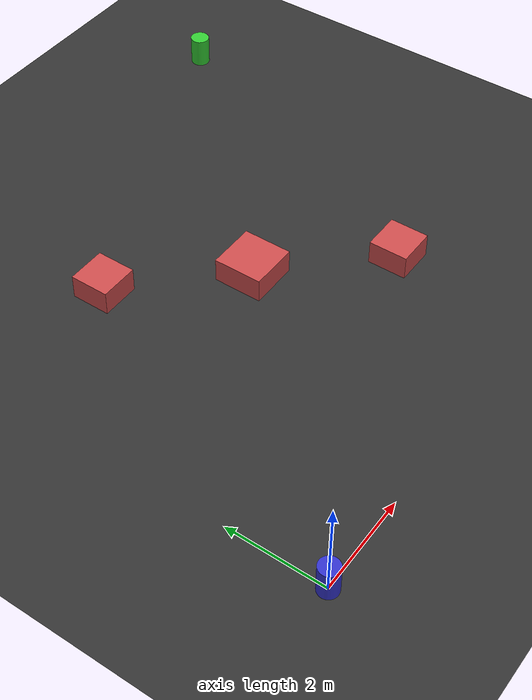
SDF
<?xml version="1.0" encoding="UTF-8"?>
<sdf version="1.9">

  <world name="swarm_planning_world">
    <!-- Physics -->
    <physics type="ode">
      <max_step_size>0.001</max_step_size>
      <real_time_factor>1.0</real_time_factor>
      <real_time_update_rate>1000</real_time_update_rate>
    </physics>

    <!-- Scene -->
    <scene>
      <ambient>0.5 0.5 0.5 1</ambient>
      <background>0.7 0.7 0.7 1</background>
      <shadows>true</shadows>
      <grid>false</grid>
    </scene>

    <!-- Light -->
    <light type="directional" name="sun">
      <cast_shadows>true</cast_shadows>
      <pose>0 0 10 0 0 0</pose>
      <diffuse>0.8 0.8 0.8 1</diffuse>
      <specular>0.2 0.2 0.2 1</specular>
      <attenuation>
        <range>100</range>
        <constant>0.5</constant>
        <linear>0.01</linear>
        <quadratic>0.001</quadratic>
      </attenuation>
    </light>

    <!-- Ground Plane -->
    <model name="ground_plane">
      <static>true</static>
      <link name="link">
        <collision name="collision">
          <geometry>
            <plane>
              <normal>0 0 1</normal>
              <size>50 50</size>
            </plane>
          </geometry>
          <surface>
            <friction>
              <ode>
                <mu>1.0</mu>
                <mu2>1.0</mu2>
              </ode>
            </friction>
          </surface>
        </collision>
        <visual name="visual">
          <geometry>
            <plane>
              <normal>0 0 1</normal>
              <size>50 50</size>
            </plane>
          </geometry>
          <material>
            <ambient>0.2 0.2 0.2 1</ambient>
            <diffuse>0.2 0.2 0.2 1</diffuse>
          </material>
        </visual>
      </link>
    </model>

    <!-- Robot (TurtleBot3-like) -->
    <model name="robot">
      <pose>0 0 0 0 0 0</pose>
      <static>false</static>
      <link name="base_link">
        <!-- Main body -->
        <pose>0 0 0.1 0 0 0</pose>
        <inertial>
          <mass>1.0</mass>
          <inertia>
            <ixx>0.001</ixx>
            <ixy>0</ixy>
            <ixz>0</ixz>
            <iyy>0.001</iyy>
            <iyz>0</iyz>
            <izz>0.001</izz>
          </inertia>
        </inertial>
        <collision name="collision">
          <geometry>
            <cylinder>
              <radius>0.15</radius>
              <length>0.1</length>
            </cylinder>
          </geometry>
        </collision>
        <visual name="visual">
          <geometry>
            <cylinder>
              <radius>0.15</radius>
              <length>0.1</length>
            </cylinder>
          </geometry>
          <material>
            <ambient>0.3 0.5 0.8 1</ambient>
            <diffuse>0.3 0.5 0.8 1</diffuse>
          </material>
        </visual>
      </link>
    </model>

    <!-- Obstacles -->
    <!-- Obstacle 1 -->
    <model name="obstacle_1">
      <pose>5 5 0.25 0 0 0</pose>
      <static>true</static>
      <link name="link">
        <collision name="collision">
          <geometry>
            <box>
              <size>1 1 0.5</size>
            </box>
          </geometry>
        </collision>
        <visual name="visual">
          <geometry>
            <box>
              <size>1 1 0.5</size>
            </box>
          </geometry>
          <material>
            <ambient>0.8 0.3 0.3 1</ambient>
            <diffuse>0.8 0.3 0.3 1</diffuse>
          </material>
        </visual>
      </link>
    </model>

    <!-- Obstacle 2 -->
    <model name="obstacle_2">
      <pose>3 7 0.25 0 0 0</pose>
      <static>true</static>
      <link name="link">
        <collision name="collision">
          <geometry>
            <box>
              <size>0.8 0.8 0.5</size>
            </box>
          </geometry>
        </collision>
        <visual name="visual">
          <geometry>
            <box>
              <size>0.8 0.8 0.5</size>
            </box>
          </geometry>
          <material>
            <ambient>0.8 0.3 0.3 1</ambient>
            <diffuse>0.8 0.3 0.3 1</diffuse>
          </material>
        </visual>
      </link>
    </model>

    <!-- Obstacle 3 -->
    <model name="obstacle_3">
      <pose>7 3 0.25 0 0 0</pose>
      <static>true</static>
      <link name="link">
        <collision name="collision">
          <geometry>
            <box>
              <size>0.8 0.8 0.5</size>
            </box>
          </geometry>
        </collision>
        <visual name="visual">
          <geometry>
            <box>
              <size>0.8 0.8 0.5</size>
            </box>
          </geometry>
          <material>
            <ambient>0.8 0.3 0.3 1</ambient>
            <diffuse>0.8 0.3 0.3 1</diffuse>
          </material>
        </visual>
      </link>
    </model>

    <!-- Goal Marker -->
    <model name="goal">
      <pose>10 10 0.1 0 0 0</pose>
      <static>true</static>
      <link name="link">
        <visual name="visual">
          <geometry>
            <cylinder>
              <radius>0.2</radius>
              <height>0.02</height>
            </cylinder>
          </geometry>
          <material>
            <ambient>0.2 0.8 0.2 1</ambient>
            <diffuse>0.2 0.8 0.2 1</diffuse>
            <emissive>0.1 0.4 0.1 1</emissive>
          </material>
        </visual>
      </link>
    </model>

    <!-- Start Marker -->
    <model name="start">
      <pose>0 0 0.1 0 0 0</pose>
      <static>true</static>
      <link name="link">
        <visual name="visual">
          <geometry>
            <cylinder>
              <radius>0.2</radius>
              <height>0.02</height>
            </cylinder>
          </geometry>
          <material>
            <ambient>0.2 0.2 0.8 1</ambient>
            <diffuse>0.2 0.2 0.8 1</diffuse>
            <emissive>0.1 0.1 0.4 1</emissive>
          </material>
        </visual>
      </link>
    </model>

    <!-- Physics Settings -->
    <gravity>0 0 -9.8</gravity>

  </world>
</sdf>
